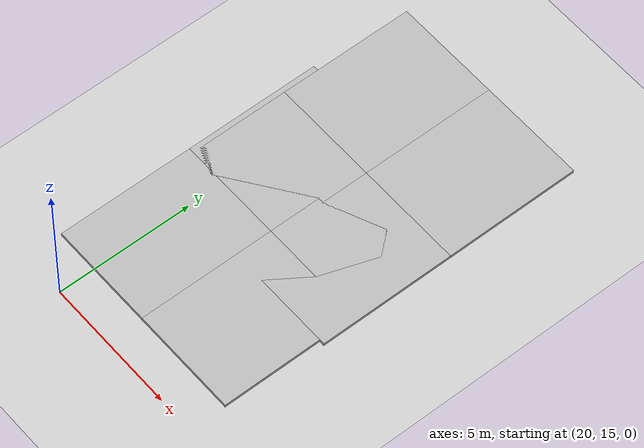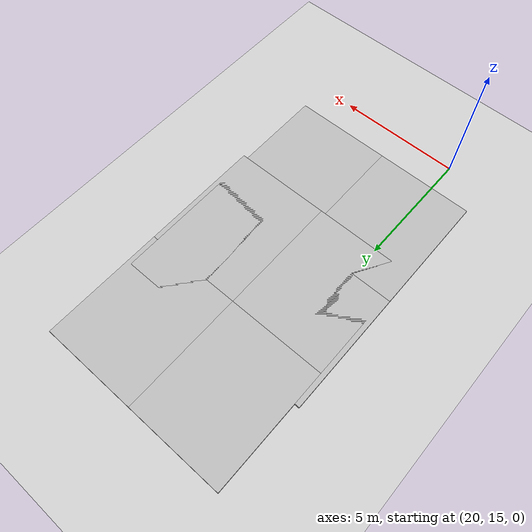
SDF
<sdf version="1.7">
 <world name="empty_world">
  <model name="ground_plane">
   <static>1</static>
   <link name="link">
    <collision name="collision">
     <geometry><plane><normal>0 0 1</normal><size>1 1</size></plane></geometry>
    </collision>
    <visual name="visual">
     <geometry><plane><normal>0 0 1</normal><size>100 100</size></plane></geometry>
     <material>
      <ambient>0.8 0.8 0.8 1</ambient>
      <diffuse>0.8 0.8 0.8 1</diffuse>
      <specular>0.8 0.8 0.8 1</specular>
     </material>
    </visual>
   </link>
  </model>
  <model name="mud_box_1">
   <static>1</static>
   <link name="link">
    <collision name="collision"><geometry><box><size>8 10 0.2</size></box></geometry></collision>
    <visual name="visual_1">
     <pose>-2 2.5 0 0 -0 0</pose>
     <cast_shadows>0</cast_shadows>
     <geometry><box><size>4 5 0.2</size></box></geometry>
     <material>
      <script>
       <uri>model://mud_box/materials/scripts</uri>
       <uri>model://mud_box/materials/textures</uri>
       <name>vrc/mud</name>
      </script>
     </material>
    </visual>
    <visual name="visual_2">
     <pose>2 2.5 0 0 -0 0</pose>
     <cast_shadows>0</cast_shadows>
     <geometry><box><size>4 5 0.2</size></box></geometry>
     <material>
      <script>
       <uri>model://mud_box/materials/scripts</uri>
       <uri>model://mud_box/materials/textures</uri>
       <name>vrc/mud</name>
      </script>
     </material>
    </visual>
    <visual name="visual_3">
     <pose>2 -2.5 0 0 -0 0</pose>
     <cast_shadows>0</cast_shadows>
     <geometry><box><size>4 5 0.2</size></box></geometry>
     <material>
      <script>
       <uri>model://mud_box/materials/scripts</uri>
       <uri>model://mud_box/materials/textures</uri>
       <name>vrc/mud</name>
      </script>
     </material>
    </visual>
    <visual name="visual_4">
     <pose>-2 -2.5 0 0 -0 0</pose>
     <cast_shadows>0</cast_shadows>
     <geometry><box><size>4 5 0.2</size></box></geometry>
     <material>
      <script>
       <uri>model://mud_box/materials/scripts</uri>
       <uri>model://mud_box/materials/textures</uri>
       <name>vrc/mud</name>
      </script>
     </material>
    </visual>
   </link>
   <pose>22.5614 24.9588 0 0 -0 0</pose>
  </model>
  <model name="mud_box_4">
   <static>1</static>
   <link name="link">
    <collision name="collision"><geometry><box><size>8 10 0.2</size></box></geometry></collision>
    <visual name="visual_1">
     <pose>-2 2.5 0 0 -0 0</pose>
     <cast_shadows>0</cast_shadows>
     <geometry><box><size>4 5 0.2</size></box></geometry>
     <material>
      <script>
       <uri>model://mud_box/materials/scripts</uri>
       <uri>model://mud_box/materials/textures</uri>
       <name>vrc/mud</name>
      </script>
     </material>
    </visual>
    <visual name="visual_2">
     <pose>2 2.5 0 0 -0 0</pose>
     <cast_shadows>0</cast_shadows>
     <geometry><box><size>4 5 0.2</size></box></geometry>
     <material>
      <script>
       <uri>model://mud_box/materials/scripts</uri>
       <uri>model://mud_box/materials/textures</uri>
       <name>vrc/mud</name>
      </script>
     </material>
    </visual>
    <visual name="visual_3">
     <pose>2 -2.5 0 0 -0 0</pose>
     <cast_shadows>0</cast_shadows>
     <geometry><box><size>4 5 0.2</size></box></geometry>
     <material>
      <script>
       <uri>model://mud_box/materials/scripts</uri>
       <uri>model://mud_box/materials/textures</uri>
       <name>vrc/mud</name>
      </script>
     </material>
    </visual>
    <visual name="visual_4">
     <pose>-2 -2.5 0 0 -0 0</pose>
     <cast_shadows>0</cast_shadows>
     <geometry><box><size>4 5 0.2</size></box></geometry>
     <material>
      <script>
       <uri>model://mud_box/materials/scripts</uri>
       <uri>model://mud_box/materials/textures</uri>
       <name>vrc/mud</name>
      </script>
     </material>
    </visual>
   </link>
   <pose>22.3699 21.3138 0 0 -0 0</pose>
  </model>
 </world>
</sdf>
